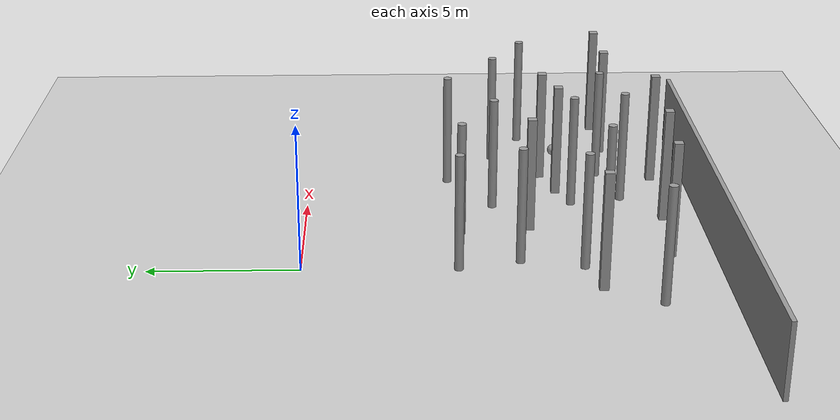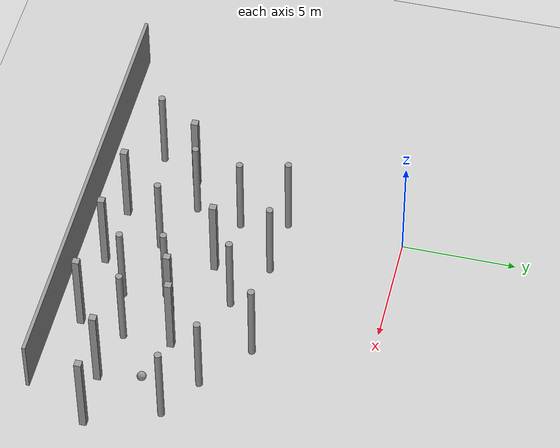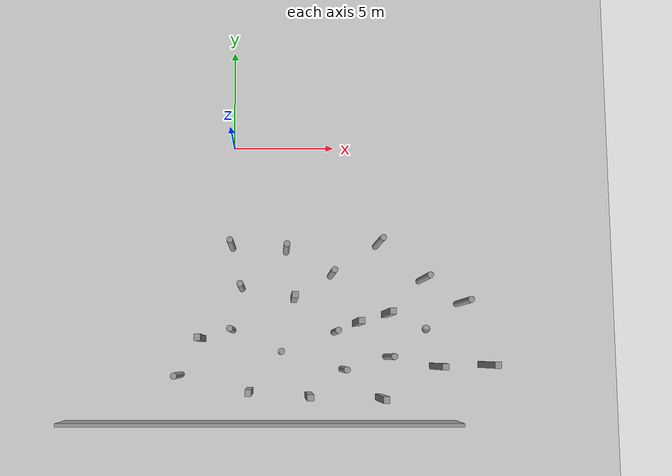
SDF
<sdf version="1.6">
 <world name="default">
  <model name="ground_plane">
   <static>1</static>
   <link name="link">
    <collision name="collision">
     <geometry><plane><normal>0 0 1</normal><size>100 100</size></plane></geometry>
    </collision>
    <visual name="visual">
     <cast_shadows>0</cast_shadows>
     <geometry><plane><normal>0 0 1</normal><size>100 100</size></plane></geometry>
     <material>
      <script><uri>file://media/materials/scripts/gazebo.material</uri><name>Gazebo/Gray</name></script>
     </material>
    </visual>
   </link>
  </model>
  <model name="unit_sphere">
   <link name="link">
    <inertial>
     <mass>1</mass>
     <inertia><ixx>0.1</ixx><ixy>0</ixy><ixz>0</ixz><iyy>0.1</iyy><iyz>0</iyz><izz>0.1</izz></inertia>
    </inertial>
    <gravity>0</gravity>
    <visual name="visual">
     <geometry><sphere><radius>0.203941</radius></sphere></geometry>
     <material>
      <script><name>Gazebo/Grey</name><uri>file://media/materials/scripts/gazebo.material</uri></script>
      <shader type="pixel"><normal_map>__default__</normal_map></shader>
     </material>
    </visual>
    <collision name="collision">
     <geometry><sphere><radius>0.203941</radius></sphere></geometry>
     <surface>
      <friction>
       <ode><mu>1</mu><mu2>1</mu2><fdir1>0 0 0</fdir1><slip1>0</slip1><slip2>0</slip2></ode>
       <torsional>
        <coefficient>1</coefficient>
        <patch_radius>0</patch_radius>
        <surface_radius>0</surface_radius>
        <use_patch_radius>1</use_patch_radius>
        <ode><slip>0</slip></ode>
       </torsional>
      </friction>
      <bounce><restitution_coefficient>0</restitution_coefficient><threshold>1e+06</threshold></bounce>
      <contact>
       <collide_without_contact>0</collide_without_contact>
       <collide_without_contact_bitmask>1</collide_without_contact_bitmask>
       <collide_bitmask>1</collide_bitmask>
       <ode>
        <soft_cfm>0</soft_cfm>
        <soft_erp>0.2</soft_erp>
        <kp>1e+13</kp>
        <kd>1</kd>
        <max_vel>0.01</max_vel>
        <min_depth>0</min_depth>
       </ode>
       <bullet>
        <split_impulse>1</split_impulse>
        <split_impulse_penetration_threshold>-0.01</split_impulse_penetration_threshold>
        <soft_cfm>0</soft_cfm>
        <soft_erp>0.2</soft_erp>
        <kp>1e+13</kp>
        <kd>1</kd>
       </bullet>
      </contact>
     </surface>
    </collision>
   </link>
   <static>0</static>
   <pose>9.54607 -9.14462 0.203941 0 -0 0</pose>
  </model>
  <model name="unit_box_clone_7">
   <link name="link">
    <inertial>
     <mass>1000</mass>
     <inertia><ixx>166.667</ixx><ixy>0</ixy><ixz>0</ixz><iyy>166.667</iyy><iyz>0</iyz><izz>166.667</izz></inertia>
    </inertial>
    <visual name="visual">
     <geometry><box><size>0.3 0.3 4</size></box></geometry>
     <material>
      <script><name>Gazebo/Grey</name><uri>file://media/materials/scripts/gazebo.material</uri></script>
      <shader type="vertex"><normal_map>__default__</normal_map></shader>
      <ambient>0.3 0.3 0.3 1</ambient>
      <diffuse>0.7 0.7 0.7 1</diffuse>
      <specular>0.01 0.01 0.01 1</specular>
      <emissive>0 0 0 1</emissive>
     </material>
    </visual>
    <collision name="collision">
     <geometry><box><size>0.3 0.3 4</size></box></geometry>
     <surface>
      <friction>
       <ode><mu>1</mu><mu2>1</mu2><fdir1>0 0 0</fdir1><slip1>0</slip1><slip2>0</slip2></ode>
       <torsional>
        <coefficient>1</coefficient>
        <patch_radius>0</patch_radius>
        <surface_radius>0</surface_radius>
        <use_patch_radius>1</use_patch_radius>
        <ode><slip>0</slip></ode>
       </torsional>
      </friction>
      <bounce><restitution_coefficient>0</restitution_coefficient><threshold>1e+06</threshold></bounce>
      <contact>
       <collide_without_contact>0</collide_without_contact>
       <collide_without_contact_bitmask>1</collide_without_contact_bitmask>
       <collide_bitmask>1</collide_bitmask>
       <ode>
        <soft_cfm>0</soft_cfm>
        <soft_erp>0.2</soft_erp>
        <kp>1e+13</kp>
        <kd>1</kd>
        <max_vel>0.01</max_vel>
        <min_depth>0</min_depth>
       </ode>
       <bullet>
        <split_impulse>1</split_impulse>
        <split_impulse_penetration_threshold>-0.01</split_impulse_penetration_threshold>
        <soft_cfm>0</soft_cfm>
        <soft_erp>0.2</soft_erp>
        <kp>1e+13</kp>
        <kd>1</kd>
       </bullet>
      </contact>
     </surface>
    </collision>
   </link>
   <static>0</static>
   <pose>9.86044 -10.963 2 2e-06 -1.6e-05 -0.003976</pose>
  </model>
  <model name="unit_cylinder_clone_1">
   <link name="link">
    <inertial>
     <mass>1000</mass>
     <inertia><ixx>145.833</ixx><ixy>0</ixy><ixz>0</ixz><iyy>145.833</iyy><iyz>0</iyz><izz>125</izz></inertia>
    </inertial>
    <visual name="visual">
     <geometry><cylinder><radius>0.15</radius><length>4</length></cylinder></geometry>
     <material>
      <script><name>Gazebo/Grey</name><uri>file://media/materials/scripts/gazebo.material</uri></script>
      <shader type="vertex"><normal_map>__default__</normal_map></shader>
      <ambient>0.3 0.3 0.3 1</ambient>
      <diffuse>0.7 0.7 0.7 1</diffuse>
      <specular>0.01 0.01 0.01 1</specular>
      <emissive>0 0 0 1</emissive>
     </material>
    </visual>
    <collision name="collision">
     <geometry><cylinder><radius>0.15</radius><length>4</length></cylinder></geometry>
     <surface>
      <friction>
       <ode><mu>1</mu><mu2>1</mu2><fdir1>0 0 0</fdir1><slip1>0</slip1><slip2>0</slip2></ode>
       <torsional>
        <coefficient>1</coefficient>
        <patch_radius>0</patch_radius>
        <surface_radius>0</surface_radius>
        <use_patch_radius>1</use_patch_radius>
        <ode><slip>0</slip></ode>
       </torsional>
      </friction>
      <bounce><restitution_coefficient>0</restitution_coefficient><threshold>1e+06</threshold></bounce>
      <contact>
       <collide_without_contact>0</collide_without_contact>
       <collide_without_contact_bitmask>1</collide_without_contact_bitmask>
       <collide_bitmask>1</collide_bitmask>
       <ode>
        <soft_cfm>0</soft_cfm>
        <soft_erp>0.2</soft_erp>
        <kp>1e+13</kp>
        <kd>1</kd>
        <max_vel>0.01</max_vel>
        <min_depth>0</min_depth>
       </ode>
       <bullet>
        <split_impulse>1</split_impulse>
        <split_impulse_penetration_threshold>-0.01</split_impulse_penetration_threshold>
        <soft_cfm>0</soft_cfm>
        <soft_erp>0.2</soft_erp>
        <kp>1e+13</kp>
        <kd>1</kd>
       </bullet>
      </contact>
     </surface>
    </collision>
   </link>
   <static>0</static>
   <pose>2.60647 -5.30395 1.99998 -1e-06 1e-06 -0.076568</pose>
  </model>
  <model name="unit_cylinder_clone_2">
   <link name="link">
    <inertial>
     <mass>1000</mass>
     <inertia><ixx>145.833</ixx><ixy>0</ixy><ixz>0</ixz><iyy>145.833</iyy><iyz>0</iyz><izz>125</izz></inertia>
    </inertial>
    <visual name="visual">
     <geometry><cylinder><radius>0.15</radius><length>4</length></cylinder></geometry>
     <material>
      <script><name>Gazebo/Grey</name><uri>file://media/materials/scripts/gazebo.material</uri></script>
      <shader type="vertex"><normal_map>__default__</normal_map></shader>
      <ambient>0.3 0.3 0.3 1</ambient>
      <diffuse>0.7 0.7 0.7 1</diffuse>
      <specular>0.01 0.01 0.01 1</specular>
      <emissive>0 0 0 1</emissive>
     </material>
    </visual>
    <collision name="collision">
     <geometry><cylinder><radius>0.15</radius><length>4</length></cylinder></geometry>
     <surface>
      <friction>
       <ode><mu>1</mu><mu2>1</mu2><fdir1>0 0 0</fdir1><slip1>0</slip1><slip2>0</slip2></ode>
       <torsional>
        <coefficient>1</coefficient>
        <patch_radius>0</patch_radius>
        <surface_radius>0</surface_radius>
        <use_patch_radius>1</use_patch_radius>
        <ode><slip>0</slip></ode>
       </torsional>
      </friction>
      <bounce><restitution_coefficient>0</restitution_coefficient><threshold>1e+06</threshold></bounce>
      <contact>
       <collide_without_contact>0</collide_without_contact>
       <collide_without_contact_bitmask>1</collide_without_contact_bitmask>
       <collide_bitmask>1</collide_bitmask>
       <ode>
        <soft_cfm>0</soft_cfm>
        <soft_erp>0.2</soft_erp>
        <kp>1e+13</kp>
        <kd>1</kd>
        <max_vel>0.01</max_vel>
        <min_depth>0</min_depth>
       </ode>
       <bullet>
        <split_impulse>1</split_impulse>
        <split_impulse_penetration_threshold>-0.01</split_impulse_penetration_threshold>
        <soft_cfm>0</soft_cfm>
        <soft_erp>0.2</soft_erp>
        <kp>1e+13</kp>
        <kd>1</kd>
       </bullet>
      </contact>
     </surface>
    </collision>
   </link>
   <static>0</static>
   <pose>4.97347 -9.30632 1.99998 -1e-06 1e-06 -0.093582</pose>
  </model>
  <model name="unit_cylinder_clone_1_clone_9">
   <link name="link">
    <inertial>
     <mass>1000</mass>
     <inertia><ixx>145.833</ixx><ixy>0</ixy><ixz>0</ixz><iyy>145.833</iyy><iyz>0</iyz><izz>125</izz></inertia>
    </inertial>
    <visual name="visual">
     <geometry><cylinder><radius>0.15</radius><length>4</length></cylinder></geometry>
     <material>
      <script><name>Gazebo/Grey</name><uri>file://media/materials/scripts/gazebo.material</uri></script>
      <shader type="vertex"><normal_map>__default__</normal_map></shader>
      <ambient>0.3 0.3 0.3 1</ambient>
      <diffuse>0.7 0.7 0.7 1</diffuse>
      <specular>0.01 0.01 0.01 1</specular>
      <emissive>0 0 0 1</emissive>
     </material>
    </visual>
    <collision name="collision">
     <geometry><cylinder><radius>0.15</radius><length>4</length></cylinder></geometry>
     <surface>
      <friction>
       <ode><mu>1</mu><mu2>1</mu2><fdir1>0 0 0</fdir1><slip1>0</slip1><slip2>0</slip2></ode>
       <torsional>
        <coefficient>1</coefficient>
        <patch_radius>0</patch_radius>
        <surface_radius>0</surface_radius>
        <use_patch_radius>1</use_patch_radius>
        <ode><slip>0</slip></ode>
       </torsional>
      </friction>
      <bounce><restitution_coefficient>0</restitution_coefficient><threshold>1e+06</threshold></bounce>
      <contact>
       <collide_without_contact>0</collide_without_contact>
       <collide_without_contact_bitmask>1</collide_without_contact_bitmask>
       <collide_bitmask>1</collide_bitmask>
       <ode>
        <soft_cfm>0</soft_cfm>
        <soft_erp>0.2</soft_erp>
        <kp>1e+13</kp>
        <kd>1</kd>
        <max_vel>0.01</max_vel>
        <min_depth>0</min_depth>
       </ode>
       <bullet>
        <split_impulse>1</split_impulse>
        <split_impulse_penetration_threshold>-0.01</split_impulse_penetration_threshold>
        <soft_cfm>0</soft_cfm>
        <soft_erp>0.2</soft_erp>
        <kp>1e+13</kp>
        <kd>1</kd>
       </bullet>
      </contact>
     </surface>
    </collision>
   </link>
   <static>0</static>
   <pose>11.112 -7.88941 1.99995 -0.000251 0.000107 -0.391806</pose>
  </model>
  <model name="unit_cylinder_clone_1_clone_10">
   <link name="link">
    <inertial>
     <mass>1000</mass>
     <inertia><ixx>145.833</ixx><ixy>0</ixy><ixz>0</ixz><iyy>145.833</iyy><iyz>0</iyz><izz>125</izz></inertia>
    </inertial>
    <visual name="visual">
     <geometry><cylinder><radius>0.15</radius><length>4</length></cylinder></geometry>
     <material>
      <script><name>Gazebo/Grey</name><uri>file://media/materials/scripts/gazebo.material</uri></script>
      <shader type="vertex"><normal_map>__default__</normal_map></shader>
      <ambient>0.3 0.3 0.3 1</ambient>
      <diffuse>0.7 0.7 0.7 1</diffuse>
      <specular>0.01 0.01 0.01 1</specular>
      <emissive>0 0 0 1</emissive>
     </material>
    </visual>
    <collision name="collision">
     <geometry><cylinder><radius>0.15</radius><length>4</length></cylinder></geometry>
     <surface>
      <friction>
       <ode><mu>1</mu><mu2>1</mu2><fdir1>0 0 0</fdir1><slip1>0</slip1><slip2>0</slip2></ode>
       <torsional>
        <coefficient>1</coefficient>
        <patch_radius>0</patch_radius>
        <surface_radius>0</surface_radius>
        <use_patch_radius>1</use_patch_radius>
        <ode><slip>0</slip></ode>
       </torsional>
      </friction>
      <bounce><restitution_coefficient>0</restitution_coefficient><threshold>1e+06</threshold></bounce>
      <contact>
       <collide_without_contact>0</collide_without_contact>
       <collide_without_contact_bitmask>1</collide_without_contact_bitmask>
       <collide_bitmask>1</collide_bitmask>
       <ode>
        <soft_cfm>0</soft_cfm>
        <soft_erp>0.2</soft_erp>
        <kp>1e+13</kp>
        <kd>1</kd>
        <max_vel>0.01</max_vel>
        <min_depth>0</min_depth>
       </ode>
       <bullet>
        <split_impulse>1</split_impulse>
        <split_impulse_penetration_threshold>-0.01</split_impulse_penetration_threshold>
        <soft_cfm>0</soft_cfm>
        <soft_erp>0.2</soft_erp>
        <kp>1e+13</kp>
        <kd>1</kd>
       </bullet>
      </contact>
     </surface>
    </collision>
   </link>
   <static>0</static>
   <pose>-0.0548 -5.11449 1.99998 -1e-06 1e-06 -0.078429</pose>
  </model>
  <model name="unit_cylinder_clone_1_clone_17">
   <link name="link">
    <inertial>
     <mass>1000</mass>
     <inertia><ixx>145.833</ixx><ixy>0</ixy><ixz>0</ixz><iyy>145.833</iyy><iyz>0</iyz><izz>125</izz></inertia>
    </inertial>
    <visual name="visual">
     <geometry><cylinder><radius>0.15</radius><length>4</length></cylinder></geometry>
     <material>
      <script><name>Gazebo/Grey</name><uri>file://media/materials/scripts/gazebo.material</uri></script>
      <shader type="vertex"><normal_map>__default__</normal_map></shader>
      <ambient>0.3 0.3 0.3 1</ambient>
      <diffuse>0.7 0.7 0.7 1</diffuse>
      <specular>0.01 0.01 0.01 1</specular>
      <emissive>0 0 0 1</emissive>
     </material>
    </visual>
    <collision name="collision">
     <geometry><cylinder><radius>0.15</radius><length>4</length></cylinder></geometry>
     <surface>
      <friction>
       <ode><mu>1</mu><mu2>1</mu2><fdir1>0 0 0</fdir1><slip1>0</slip1><slip2>0</slip2></ode>
       <torsional>
        <coefficient>1</coefficient>
        <patch_radius>0</patch_radius>
        <surface_radius>0</surface_radius>
        <use_patch_radius>1</use_patch_radius>
        <ode><slip>0</slip></ode>
       </torsional>
      </friction>
      <bounce><restitution_coefficient>0</restitution_coefficient><threshold>1e+06</threshold></bounce>
      <contact>
       <collide_without_contact>0</collide_without_contact>
       <collide_without_contact_bitmask>1</collide_without_contact_bitmask>
       <collide_bitmask>1</collide_bitmask>
       <ode>
        <soft_cfm>0</soft_cfm>
        <soft_erp>0.2</soft_erp>
        <kp>1e+13</kp>
        <kd>1</kd>
        <max_vel>0.01</max_vel>
        <min_depth>0</min_depth>
       </ode>
       <bullet>
        <split_impulse>1</split_impulse>
        <split_impulse_penetration_threshold>-0.01</split_impulse_penetration_threshold>
        <soft_cfm>0</soft_cfm>
        <soft_erp>0.2</soft_erp>
        <kp>1e+13</kp>
        <kd>1</kd>
       </bullet>
      </contact>
     </surface>
    </collision>
   </link>
   <static>0</static>
   <pose>-0.030975 -9.2084 1.99995 -0.000252 0.000105 -0.397866</pose>
  </model>
  <model name="unit_cylinder_clone_1_clone_20">
   <link name="link">
    <inertial>
     <mass>1000</mass>
     <inertia><ixx>145.833</ixx><ixy>0</ixy><ixz>0</ixz><iyy>145.833</iyy><iyz>0</iyz><izz>125</izz></inertia>
    </inertial>
    <visual name="visual">
     <geometry><cylinder><radius>0.15</radius><length>4</length></cylinder></geometry>
     <material>
      <script><name>Gazebo/Grey</name><uri>file://media/materials/scripts/gazebo.material</uri></script>
      <shader type="vertex"><normal_map>__default__</normal_map></shader>
      <ambient>0.3 0.3 0.3 1</ambient>
      <diffuse>0.7 0.7 0.7 1</diffuse>
      <specular>0.01 0.01 0.01 1</specular>
      <emissive>0 0 0 1</emissive>
     </material>
    </visual>
    <collision name="collision">
     <geometry><cylinder><radius>0.15</radius><length>4</length></cylinder></geometry>
     <surface>
      <friction>
       <ode><mu>1</mu><mu2>1</mu2><fdir1>0 0 0</fdir1><slip1>0</slip1><slip2>0</slip2></ode>
       <torsional>
        <coefficient>1</coefficient>
        <patch_radius>0</patch_radius>
        <surface_radius>0</surface_radius>
        <use_patch_radius>1</use_patch_radius>
        <ode><slip>0</slip></ode>
       </torsional>
      </friction>
      <bounce><restitution_coefficient>0</restitution_coefficient><threshold>1e+06</threshold></bounce>
      <contact>
       <collide_without_contact>0</collide_without_contact>
       <collide_without_contact_bitmask>1</collide_without_contact_bitmask>
       <collide_bitmask>1</collide_bitmask>
       <ode>
        <soft_cfm>0</soft_cfm>
        <soft_erp>0.2</soft_erp>
        <kp>1e+13</kp>
        <kd>1</kd>
        <max_vel>0.01</max_vel>
        <min_depth>0</min_depth>
       </ode>
       <bullet>
        <split_impulse>1</split_impulse>
        <split_impulse_penetration_threshold>-0.01</split_impulse_penetration_threshold>
        <soft_cfm>0</soft_cfm>
        <soft_erp>0.2</soft_erp>
        <kp>1e+13</kp>
        <kd>1</kd>
       </bullet>
      </contact>
     </surface>
    </collision>
   </link>
   <static>0</static>
   <pose>0.426078 -7.14787 1.99995 -0.000251 0.000106 -0.395373</pose>
  </model>
  <model name="unit_cylinder_clone_1_clone_23">
   <link name="link">
    <inertial>
     <mass>1000</mass>
     <inertia><ixx>145.833</ixx><ixy>0</ixy><ixz>0</ixz><iyy>145.833</iyy><iyz>0</iyz><izz>125</izz></inertia>
    </inertial>
    <visual name="visual">
     <geometry><cylinder><radius>0.15</radius><length>4</length></cylinder></geometry>
     <material>
      <script><name>Gazebo/Grey</name><uri>file://media/materials/scripts/gazebo.material</uri></script>
      <shader type="vertex"><normal_map>__default__</normal_map></shader>
      <ambient>0.3 0.3 0.3 1</ambient>
      <diffuse>0.7 0.7 0.7 1</diffuse>
      <specular>0.01 0.01 0.01 1</specular>
      <emissive>0 0 0 1</emissive>
     </material>
    </visual>
    <collision name="collision">
     <geometry><cylinder><radius>0.15</radius><length>4</length></cylinder></geometry>
     <surface>
      <friction>
       <ode><mu>1</mu><mu2>1</mu2><fdir1>0 0 0</fdir1><slip1>0</slip1><slip2>0</slip2></ode>
       <torsional>
        <coefficient>1</coefficient>
        <patch_radius>0</patch_radius>
        <surface_radius>0</surface_radius>
        <use_patch_radius>1</use_patch_radius>
        <ode><slip>0</slip></ode>
       </torsional>
      </friction>
      <bounce><restitution_coefficient>0</restitution_coefficient><threshold>1e+06</threshold></bounce>
      <contact>
       <collide_without_contact>0</collide_without_contact>
       <collide_without_contact_bitmask>1</collide_without_contact_bitmask>
       <collide_bitmask>1</collide_bitmask>
       <ode>
        <soft_cfm>0</soft_cfm>
        <soft_erp>0.2</soft_erp>
        <kp>1e+13</kp>
        <kd>1</kd>
        <max_vel>0.01</max_vel>
        <min_depth>0</min_depth>
       </ode>
       <bullet>
        <split_impulse>1</split_impulse>
        <split_impulse_penetration_threshold>-0.01</split_impulse_penetration_threshold>
        <soft_cfm>0</soft_cfm>
        <soft_erp>0.2</soft_erp>
        <kp>1e+13</kp>
        <kd>1</kd>
       </bullet>
      </contact>
     </surface>
    </collision>
   </link>
   <static>0</static>
   <pose>7.09207 -5.01036 1.99998 -1e-06 1e-06 -0.245924</pose>
  </model>
  <model name="unit_cylinder_clone_1_clone_24">
   <link name="link">
    <inertial>
     <mass>1000</mass>
     <inertia><ixx>145.833</ixx><ixy>0</ixy><ixz>0</ixz><iyy>145.833</iyy><iyz>0</iyz><izz>125</izz></inertia>
    </inertial>
    <visual name="visual">
     <geometry><cylinder><radius>0.15</radius><length>4</length></cylinder></geometry>
     <material>
      <script><name>Gazebo/Grey</name><uri>file://media/materials/scripts/gazebo.material</uri></script>
      <shader type="vertex"><normal_map>__default__</normal_map></shader>
      <ambient>0.3 0.3 0.3 1</ambient>
      <diffuse>0.7 0.7 0.7 1</diffuse>
      <specular>0.01 0.01 0.01 1</specular>
      <emissive>0 0 0 1</emissive>
     </material>
    </visual>
    <collision name="collision">
     <geometry><cylinder><radius>0.15</radius><length>4</length></cylinder></geometry>
     <surface>
      <friction>
       <ode><mu>1</mu><mu2>1</mu2><fdir1>0 0 0</fdir1><slip1>0</slip1><slip2>0</slip2></ode>
       <torsional>
        <coefficient>1</coefficient>
        <patch_radius>0</patch_radius>
        <surface_radius>0</surface_radius>
        <use_patch_radius>1</use_patch_radius>
        <ode><slip>0</slip></ode>
       </torsional>
      </friction>
      <bounce><restitution_coefficient>0</restitution_coefficient><threshold>1e+06</threshold></bounce>
      <contact>
       <collide_without_contact>0</collide_without_contact>
       <collide_without_contact_bitmask>1</collide_without_contact_bitmask>
       <collide_bitmask>1</collide_bitmask>
       <ode>
        <soft_cfm>0</soft_cfm>
        <soft_erp>0.2</soft_erp>
        <kp>1e+13</kp>
        <kd>1</kd>
        <max_vel>0.01</max_vel>
        <min_depth>0</min_depth>
       </ode>
       <bullet>
        <split_impulse>1</split_impulse>
        <split_impulse_penetration_threshold>-0.01</split_impulse_penetration_threshold>
        <soft_cfm>0</soft_cfm>
        <soft_erp>0.2</soft_erp>
        <kp>1e+13</kp>
        <kd>1</kd>
       </bullet>
      </contact>
     </surface>
    </collision>
   </link>
   <static>0</static>
   <pose>9.24851 -6.7521 1.99995 -0.000251 0.000106 -0.394804</pose>
  </model>
  <model name="unit_cylinder_clone_1_clone_28">
   <link name="link">
    <inertial>
     <mass>1000</mass>
     <inertia><ixx>145.833</ixx><ixy>0</ixy><ixz>0</ixz><iyy>145.833</iyy><iyz>0</iyz><izz>125</izz></inertia>
    </inertial>
    <visual name="visual">
     <geometry><cylinder><radius>0.15</radius><length>4</length></cylinder></geometry>
     <material>
      <script><name>Gazebo/Grey</name><uri>file://media/materials/scripts/gazebo.material</uri></script>
      <shader type="vertex"><normal_map>__default__</normal_map></shader>
      <ambient>0.3 0.3 0.3 1</ambient>
      <diffuse>0.7 0.7 0.7 1</diffuse>
      <specular>0.01 0.01 0.01 1</specular>
      <emissive>0 0 0 1</emissive>
     </material>
    </visual>
    <collision name="collision">
     <geometry><cylinder><radius>0.15</radius><length>4</length></cylinder></geometry>
     <surface>
      <friction>
       <ode><mu>1</mu><mu2>1</mu2><fdir1>0 0 0</fdir1><slip1>0</slip1><slip2>0</slip2></ode>
       <torsional>
        <coefficient>1</coefficient>
        <patch_radius>0</patch_radius>
        <surface_radius>0</surface_radius>
        <use_patch_radius>1</use_patch_radius>
        <ode><slip>0</slip></ode>
       </torsional>
      </friction>
      <bounce><restitution_coefficient>0</restitution_coefficient><threshold>1e+06</threshold></bounce>
      <contact>
       <collide_without_contact>0</collide_without_contact>
       <collide_without_contact_bitmask>1</collide_without_contact_bitmask>
       <collide_bitmask>1</collide_bitmask>
       <ode>
        <soft_cfm>0</soft_cfm>
        <soft_erp>0.2</soft_erp>
        <kp>1e+13</kp>
        <kd>1</kd>
        <max_vel>0.01</max_vel>
        <min_depth>0</min_depth>
       </ode>
       <bullet>
        <split_impulse>1</split_impulse>
        <split_impulse_penetration_threshold>-0.01</split_impulse_penetration_threshold>
        <soft_cfm>0</soft_cfm>
        <soft_erp>0.2</soft_erp>
        <kp>1e+13</kp>
        <kd>1</kd>
       </bullet>
      </contact>
     </surface>
    </collision>
   </link>
   <static>0</static>
   <pose>-2.58286 -11.3823 1.99995 -0.000252 0.000105 -0.397867</pose>
  </model>
  <model name="unit_cylinder_clone_1_clone_7_clone_4">
   <link name="link">
    <inertial>
     <mass>1000</mass>
     <inertia><ixx>145.833</ixx><ixy>0</ixy><ixz>0</ixz><iyy>145.833</iyy><iyz>0</iyz><izz>125</izz></inertia>
    </inertial>
    <visual name="visual">
     <geometry><cylinder><radius>0.15</radius><length>4</length></cylinder></geometry>
     <material>
      <script><name>Gazebo/Grey</name><uri>file://media/materials/scripts/gazebo.material</uri></script>
      <shader type="vertex"><normal_map>__default__</normal_map></shader>
      <ambient>0.3 0.3 0.3 1</ambient>
      <diffuse>0.7 0.7 0.7 1</diffuse>
      <specular>0.01 0.01 0.01 1</specular>
      <emissive>0 0 0 1</emissive>
     </material>
    </visual>
    <collision name="collision">
     <geometry><cylinder><radius>0.15</radius><length>4</length></cylinder></geometry>
     <surface>
      <friction>
       <ode><mu>1</mu><mu2>1</mu2><fdir1>0 0 0</fdir1><slip1>0</slip1><slip2>0</slip2></ode>
       <torsional>
        <coefficient>1</coefficient>
        <patch_radius>0</patch_radius>
        <surface_radius>0</surface_radius>
        <use_patch_radius>1</use_patch_radius>
        <ode><slip>0</slip></ode>
       </torsional>
      </friction>
      <bounce><restitution_coefficient>0</restitution_coefficient><threshold>1e+06</threshold></bounce>
      <contact>
       <collide_without_contact>0</collide_without_contact>
       <collide_without_contact_bitmask>1</collide_without_contact_bitmask>
       <collide_bitmask>1</collide_bitmask>
       <ode>
        <soft_cfm>0</soft_cfm>
        <soft_erp>0.2</soft_erp>
        <kp>1e+13</kp>
        <kd>1</kd>
        <max_vel>0.01</max_vel>
        <min_depth>0</min_depth>
       </ode>
       <bullet>
        <split_impulse>1</split_impulse>
        <split_impulse_penetration_threshold>-0.01</split_impulse_penetration_threshold>
        <soft_cfm>0</soft_cfm>
        <soft_erp>0.2</soft_erp>
        <kp>1e+13</kp>
        <kd>1</kd>
       </bullet>
      </contact>
     </surface>
    </collision>
   </link>
   <static>0</static>
   <pose>2.35006 -10.2609 1.99995 -0.000251 0.000107 -0.391652</pose>
  </model>
  <model name="Untitled">
   <pose>1.33364 -13.692 0 0 -0 0</pose>
   <link name="Wall_3">
    <collision name="Wall_3_Collision">
     <geometry><box><size>19.25 0.15 2.5</size></box></geometry>
     <pose>0 0 1.25 0 -0 0</pose>
    </collision>
    <visual name="Wall_3_Visual">
     <pose>0 0 1.25 0 -0 0</pose>
     <geometry><box><size>19.25 0.15 2.5</size></box></geometry>
     <material>
      <script><uri>file://media/materials/scripts/gazebo.material</uri><name>Gazebo/Grey</name></script>
      <ambient>1 1 1 1</ambient>
     </material>
     <meta><layer>0</layer></meta>
    </visual>
   </link>
   <static>1</static>
  </model>
  <model name="unit_cylinder_clone_clone">
   <link name="link">
    <inertial>
     <mass>1000</mass>
     <inertia><ixx>145.833</ixx><ixy>0</ixy><ixz>0</ixz><iyy>145.833</iyy><iyz>0</iyz><izz>125</izz></inertia>
    </inertial>
    <visual name="visual">
     <geometry><cylinder><radius>0.15</radius><length>4</length></cylinder></geometry>
     <material>
      <script><name>Gazebo/Grey</name><uri>file://media/materials/scripts/gazebo.material</uri></script>
      <shader type="vertex"><normal_map>__default__</normal_map></shader>
      <ambient>0.3 0.3 0.3 1</ambient>
      <diffuse>0.7 0.7 0.7 1</diffuse>
      <specular>0.01 0.01 0.01 1</specular>
      <emissive>0 0 0 1</emissive>
     </material>
    </visual>
    <collision name="collision">
     <geometry><cylinder><radius>0.15</radius><length>4</length></cylinder></geometry>
     <surface>
      <friction>
       <ode><mu>1</mu><mu2>1</mu2><fdir1>0 0 0</fdir1><slip1>0</slip1><slip2>0</slip2></ode>
       <torsional>
        <coefficient>1</coefficient>
        <patch_radius>0</patch_radius>
        <surface_radius>0</surface_radius>
        <use_patch_radius>1</use_patch_radius>
        <ode><slip>0</slip></ode>
       </torsional>
      </friction>
      <bounce><restitution_coefficient>0</restitution_coefficient><threshold>1e+06</threshold></bounce>
      <contact>
       <collide_without_contact>0</collide_without_contact>
       <collide_without_contact_bitmask>1</collide_without_contact_bitmask>
       <collide_bitmask>1</collide_bitmask>
       <ode>
        <soft_cfm>0</soft_cfm>
        <soft_erp>0.2</soft_erp>
        <kp>1e+13</kp>
        <kd>1</kd>
        <max_vel>0.01</max_vel>
        <min_depth>0</min_depth>
       </ode>
       <bullet>
        <split_impulse>1</split_impulse>
        <split_impulse_penetration_threshold>-0.01</split_impulse_penetration_threshold>
        <soft_cfm>0</soft_cfm>
        <soft_erp>0.2</soft_erp>
        <kp>1e+13</kp>
        <kd>1</kd>
       </bullet>
      </contact>
     </surface>
    </collision>
   </link>
   <static>0</static>
   <pose>5.34826 -11.1077 1.99998 -1e-06 1e-06 -0.081884</pose>
  </model>
  <model name="unit_cylinder_clone_clone_0">
   <link name="link">
    <inertial>
     <mass>1000</mass>
     <inertia><ixx>145.833</ixx><ixy>0</ixy><ixz>0</ixz><iyy>145.833</iyy><iyz>0</iyz><izz>125</izz></inertia>
    </inertial>
    <visual name="visual">
     <geometry><cylinder><radius>0.15</radius><length>4</length></cylinder></geometry>
     <material>
      <script><name>Gazebo/Grey</name><uri>file://media/materials/scripts/gazebo.material</uri></script>
      <shader type="vertex"><normal_map>__default__</normal_map></shader>
      <ambient>0.3 0.3 0.3 1</ambient>
      <diffuse>0.7 0.7 0.7 1</diffuse>
      <specular>0.01 0.01 0.01 1</specular>
      <emissive>0 0 0 1</emissive>
     </material>
    </visual>
    <collision name="collision">
     <geometry><cylinder><radius>0.15</radius><length>4</length></cylinder></geometry>
     <surface>
      <friction>
       <ode><mu>1</mu><mu2>1</mu2><fdir1>0 0 0</fdir1><slip1>0</slip1><slip2>0</slip2></ode>
       <torsional>
        <coefficient>1</coefficient>
        <patch_radius>0</patch_radius>
        <surface_radius>0</surface_radius>
        <use_patch_radius>1</use_patch_radius>
        <ode><slip>0</slip></ode>
       </torsional>
      </friction>
      <bounce><restitution_coefficient>0</restitution_coefficient><threshold>1e+06</threshold></bounce>
      <contact>
       <collide_without_contact>0</collide_without_contact>
       <collide_without_contact_bitmask>1</collide_without_contact_bitmask>
       <collide_bitmask>1</collide_bitmask>
       <ode>
        <soft_cfm>0</soft_cfm>
        <soft_erp>0.2</soft_erp>
        <kp>1e+13</kp>
        <kd>1</kd>
        <max_vel>0.01</max_vel>
        <min_depth>0</min_depth>
       </ode>
       <bullet>
        <split_impulse>1</split_impulse>
        <split_impulse_penetration_threshold>-0.01</split_impulse_penetration_threshold>
        <soft_cfm>0</soft_cfm>
        <soft_erp>0.2</soft_erp>
        <kp>1e+13</kp>
        <kd>1</kd>
       </bullet>
      </contact>
     </surface>
    </collision>
   </link>
   <static>0</static>
   <pose>7.5332 -10.5025 1.99998 -1e-06 1e-06 -0.083173</pose>
  </model>
  <model name="unit_cylinder_clone_clone_1">
   <link name="link">
    <inertial>
     <mass>1000</mass>
     <inertia><ixx>145.833</ixx><ixy>0</ixy><ixz>0</ixz><iyy>145.833</iyy><iyz>0</iyz><izz>125</izz></inertia>
    </inertial>
    <visual name="visual">
     <geometry><cylinder><radius>0.15</radius><length>4</length></cylinder></geometry>
     <material>
      <script><name>Gazebo/Grey</name><uri>file://media/materials/scripts/gazebo.material</uri></script>
      <shader type="vertex"><normal_map>__default__</normal_map></shader>
      <ambient>0.3 0.3 0.3 1</ambient>
      <diffuse>0.7 0.7 0.7 1</diffuse>
      <specular>0.01 0.01 0.01 1</specular>
      <emissive>0 0 0 1</emissive>
     </material>
    </visual>
    <collision name="collision">
     <geometry><cylinder><radius>0.15</radius><length>4</length></cylinder></geometry>
     <surface>
      <friction>
       <ode><mu>1</mu><mu2>1</mu2><fdir1>0 0 0</fdir1><slip1>0</slip1><slip2>0</slip2></ode>
       <torsional>
        <coefficient>1</coefficient>
        <patch_radius>0</patch_radius>
        <surface_radius>0</surface_radius>
        <use_patch_radius>1</use_patch_radius>
        <ode><slip>0</slip></ode>
       </torsional>
      </friction>
      <bounce><restitution_coefficient>0</restitution_coefficient><threshold>1e+06</threshold></bounce>
      <contact>
       <collide_without_contact>0</collide_without_contact>
       <collide_without_contact_bitmask>1</collide_without_contact_bitmask>
       <collide_bitmask>1</collide_bitmask>
       <ode>
        <soft_cfm>0</soft_cfm>
        <soft_erp>0.2</soft_erp>
        <kp>1e+13</kp>
        <kd>1</kd>
        <max_vel>0.01</max_vel>
        <min_depth>0</min_depth>
       </ode>
       <bullet>
        <split_impulse>1</split_impulse>
        <split_impulse_penetration_threshold>-0.01</split_impulse_penetration_threshold>
        <soft_cfm>0</soft_cfm>
        <soft_erp>0.2</soft_erp>
        <kp>1e+13</kp>
        <kd>1</kd>
       </bullet>
      </contact>
     </surface>
    </collision>
   </link>
   <static>0</static>
   <pose>4.81684 -6.51167 1.99998 -1e-06 1e-06 -0.079015</pose>
  </model>
  <model name="unit_box_clone_26_clone">
   <link name="link">
    <inertial>
     <mass>1000</mass>
     <inertia><ixx>166.667</ixx><ixy>0</ixy><ixz>0</ixz><iyy>166.667</iyy><iyz>0</iyz><izz>166.667</izz></inertia>
    </inertial>
    <visual name="visual">
     <geometry><box><size>0.3 0.3 4</size></box></geometry>
     <material>
      <script><name>Gazebo/Grey</name><uri>file://media/materials/scripts/gazebo.material</uri></script>
      <shader type="vertex"><normal_map>__default__</normal_map></shader>
      <ambient>0.3 0.3 0.3 1</ambient>
      <diffuse>0.7 0.7 0.7 1</diffuse>
      <specular>0.01 0.01 0.01 1</specular>
      <emissive>0 0 0 1</emissive>
     </material>
    </visual>
    <collision name="collision">
     <geometry><box><size>0.3 0.3 4</size></box></geometry>
     <surface>
      <friction>
       <ode><mu>1</mu><mu2>1</mu2><fdir1>0 0 0</fdir1><slip1>0</slip1><slip2>0</slip2></ode>
       <torsional>
        <coefficient>1</coefficient>
        <patch_radius>0</patch_radius>
        <surface_radius>0</surface_radius>
        <use_patch_radius>1</use_patch_radius>
        <ode><slip>0</slip></ode>
       </torsional>
      </friction>
      <bounce><restitution_coefficient>0</restitution_coefficient><threshold>1e+06</threshold></bounce>
      <contact>
       <collide_without_contact>0</collide_without_contact>
       <collide_without_contact_bitmask>1</collide_without_contact_bitmask>
       <collide_bitmask>1</collide_bitmask>
       <ode>
        <soft_cfm>0</soft_cfm>
        <soft_erp>0.2</soft_erp>
        <kp>1e+13</kp>
        <kd>1</kd>
        <max_vel>0.01</max_vel>
        <min_depth>0</min_depth>
       </ode>
       <bullet>
        <split_impulse>1</split_impulse>
        <split_impulse_penetration_threshold>-0.01</split_impulse_penetration_threshold>
        <soft_cfm>0</soft_cfm>
        <soft_erp>0.2</soft_erp>
        <kp>1e+13</kp>
        <kd>1</kd>
       </bullet>
      </contact>
     </surface>
    </collision>
   </link>
   <static>0</static>
   <pose>6.04363 -8.86029 2 -1.3e-05 -4e-06 0.00233</pose>
  </model>
  <model name="unit_box_clone_26_clone_0">
   <link name="link">
    <inertial>
     <mass>1000</mass>
     <inertia><ixx>166.667</ixx><ixy>0</ixy><ixz>0</ixz><iyy>166.667</iyy><iyz>0</iyz><izz>166.667</izz></inertia>
    </inertial>
    <visual name="visual">
     <geometry><box><size>0.3 0.3 4</size></box></geometry>
     <material>
      <script><name>Gazebo/Grey</name><uri>file://media/materials/scripts/gazebo.material</uri></script>
      <shader type="vertex"><normal_map>__default__</normal_map></shader>
      <ambient>0.3 0.3 0.3 1</ambient>
      <diffuse>0.7 0.7 0.7 1</diffuse>
      <specular>0.01 0.01 0.01 1</specular>
      <emissive>0 0 0 1</emissive>
     </material>
    </visual>
    <collision name="collision">
     <geometry><box><size>0.3 0.3 4</size></box></geometry>
     <surface>
      <friction>
       <ode><mu>1</mu><mu2>1</mu2><fdir1>0 0 0</fdir1><slip1>0</slip1><slip2>0</slip2></ode>
       <torsional>
        <coefficient>1</coefficient>
        <patch_radius>0</patch_radius>
        <surface_radius>0</surface_radius>
        <use_patch_radius>1</use_patch_radius>
        <ode><slip>0</slip></ode>
       </torsional>
      </friction>
      <bounce><restitution_coefficient>0</restitution_coefficient><threshold>1e+06</threshold></bounce>
      <contact>
       <collide_without_contact>0</collide_without_contact>
       <collide_without_contact_bitmask>1</collide_without_contact_bitmask>
       <collide_bitmask>1</collide_bitmask>
       <ode>
        <soft_cfm>0</soft_cfm>
        <soft_erp>0.2</soft_erp>
        <kp>1e+13</kp>
        <kd>1</kd>
        <max_vel>0.01</max_vel>
        <min_depth>0</min_depth>
       </ode>
       <bullet>
        <split_impulse>1</split_impulse>
        <split_impulse_penetration_threshold>-0.01</split_impulse_penetration_threshold>
        <soft_cfm>0</soft_cfm>
        <soft_erp>0.2</soft_erp>
        <kp>1e+13</kp>
        <kd>1</kd>
       </bullet>
      </contact>
     </surface>
    </collision>
   </link>
   <static>0</static>
   <pose>2.98328 -7.6671 2 1.4e-05 -2.1e-05 -0.001816</pose>
  </model>
  <model name="unit_box_clone_26_clone_6">
   <link name="link">
    <inertial>
     <mass>1000</mass>
     <inertia><ixx>166.667</ixx><ixy>0</ixy><ixz>0</ixz><iyy>166.667</iyy><iyz>0</iyz><izz>166.667</izz></inertia>
    </inertial>
    <visual name="visual">
     <geometry><box><size>0.3 0.3 4</size></box></geometry>
     <material>
      <script><name>Gazebo/Grey</name><uri>file://media/materials/scripts/gazebo.material</uri></script>
      <shader type="vertex"><normal_map>__default__</normal_map></shader>
      <ambient>0.3 0.3 0.3 1</ambient>
      <diffuse>0.7 0.7 0.7 1</diffuse>
      <specular>0.01 0.01 0.01 1</specular>
      <emissive>0 0 0 1</emissive>
     </material>
    </visual>
    <collision name="collision">
     <geometry><box><size>0.3 0.3 4</size></box></geometry>
     <surface>
      <friction>
       <ode><mu>1</mu><mu2>1</mu2><fdir1>0 0 0</fdir1><slip1>0</slip1><slip2>0</slip2></ode>
       <torsional>
        <coefficient>1</coefficient>
        <patch_radius>0</patch_radius>
        <surface_radius>0</surface_radius>
        <use_patch_radius>1</use_patch_radius>
        <ode><slip>0</slip></ode>
       </torsional>
      </friction>
      <bounce><restitution_coefficient>0</restitution_coefficient><threshold>1e+06</threshold></bounce>
      <contact>
       <collide_without_contact>0</collide_without_contact>
       <collide_without_contact_bitmask>1</collide_without_contact_bitmask>
       <collide_bitmask>1</collide_bitmask>
       <ode>
        <soft_cfm>0</soft_cfm>
        <soft_erp>0.2</soft_erp>
        <kp>1e+13</kp>
        <kd>1</kd>
        <max_vel>0.01</max_vel>
        <min_depth>0</min_depth>
       </ode>
       <bullet>
        <split_impulse>1</split_impulse>
        <split_impulse_penetration_threshold>-0.01</split_impulse_penetration_threshold>
        <soft_cfm>0</soft_cfm>
        <soft_erp>0.2</soft_erp>
        <kp>1e+13</kp>
        <kd>1</kd>
       </bullet>
      </contact>
     </surface>
    </collision>
   </link>
   <static>0</static>
   <pose>12.2559 -10.887 2 -7e-06 4e-06 -0.003725</pose>
  </model>
  <model name="unit_box_clone_26_clone_7">
   <link name="link">
    <inertial>
     <mass>1000</mass>
     <inertia><ixx>166.667</ixx><ixy>0</ixy><ixz>0</ixz><iyy>166.667</iyy><iyz>0</iyz><izz>166.667</izz></inertia>
    </inertial>
    <visual name="visual">
     <geometry><box><size>0.3 0.3 4</size></box></geometry>
     <material>
      <script><name>Gazebo/Grey</name><uri>file://media/materials/scripts/gazebo.material</uri></script>
      <shader type="vertex"><normal_map>__default__</normal_map></shader>
      <ambient>0.3 0.3 0.3 1</ambient>
      <diffuse>0.7 0.7 0.7 1</diffuse>
      <specular>0.01 0.01 0.01 1</specular>
      <emissive>0 0 0 1</emissive>
     </material>
    </visual>
    <collision name="collision">
     <geometry><box><size>0.3 0.3 4</size></box></geometry>
     <surface>
      <friction>
       <ode><mu>1</mu><mu2>1</mu2><fdir1>0 0 0</fdir1><slip1>0</slip1><slip2>0</slip2></ode>
       <torsional>
        <coefficient>1</coefficient>
        <patch_radius>0</patch_radius>
        <surface_radius>0</surface_radius>
        <use_patch_radius>1</use_patch_radius>
        <ode><slip>0</slip></ode>
       </torsional>
      </friction>
      <bounce><restitution_coefficient>0</restitution_coefficient><threshold>1e+06</threshold></bounce>
      <contact>
       <collide_without_contact>0</collide_without_contact>
       <collide_without_contact_bitmask>1</collide_without_contact_bitmask>
       <collide_bitmask>1</collide_bitmask>
       <ode>
        <soft_cfm>0</soft_cfm>
        <soft_erp>0.2</soft_erp>
        <kp>1e+13</kp>
        <kd>1</kd>
        <max_vel>0.01</max_vel>
        <min_depth>0</min_depth>
       </ode>
       <bullet>
        <split_impulse>1</split_impulse>
        <split_impulse_penetration_threshold>-0.01</split_impulse_penetration_threshold>
        <soft_cfm>0</soft_cfm>
        <soft_erp>0.2</soft_erp>
        <kp>1e+13</kp>
        <kd>1</kd>
       </bullet>
      </contact>
     </surface>
    </collision>
   </link>
   <static>0</static>
   <pose>7.49441 -8.4236 2.00001 -5.9e-05 -1e-06 -0.001959</pose>
  </model>
  <model name="unit_box_clone_26_clone_8">
   <link name="link">
    <inertial>
     <mass>1000</mass>
     <inertia><ixx>166.667</ixx><ixy>0</ixy><ixz>0</ixz><iyy>166.667</iyy><iyz>0</iyz><izz>166.667</izz></inertia>
    </inertial>
    <visual name="visual">
     <geometry><box><size>0.3 0.3 4</size></box></geometry>
     <material>
      <script><name>Gazebo/Grey</name><uri>file://media/materials/scripts/gazebo.material</uri></script>
      <shader type="vertex"><normal_map>__default__</normal_map></shader>
      <ambient>0.3 0.3 0.3 1</ambient>
      <diffuse>0.7 0.7 0.7 1</diffuse>
      <specular>0.01 0.01 0.01 1</specular>
      <emissive>0 0 0 1</emissive>
     </material>
    </visual>
    <collision name="collision">
     <geometry><box><size>0.3 0.3 4</size></box></geometry>
     <surface>
      <friction>
       <ode><mu>1</mu><mu2>1</mu2><fdir1>0 0 0</fdir1><slip1>0</slip1><slip2>0</slip2></ode>
       <torsional>
        <coefficient>1</coefficient>
        <patch_radius>0</patch_radius>
        <surface_radius>0</surface_radius>
        <use_patch_radius>1</use_patch_radius>
        <ode><slip>0</slip></ode>
       </torsional>
      </friction>
      <bounce><restitution_coefficient>0</restitution_coefficient><threshold>1e+06</threshold></bounce>
      <contact>
       <collide_without_contact>0</collide_without_contact>
       <collide_without_contact_bitmask>1</collide_without_contact_bitmask>
       <collide_bitmask>1</collide_bitmask>
       <ode>
        <soft_cfm>0</soft_cfm>
        <soft_erp>0.2</soft_erp>
        <kp>1e+13</kp>
        <kd>1</kd>
        <max_vel>0.01</max_vel>
        <min_depth>0</min_depth>
       </ode>
       <bullet>
        <split_impulse>1</split_impulse>
        <split_impulse_penetration_threshold>-0.01</split_impulse_penetration_threshold>
        <soft_cfm>0</soft_cfm>
        <soft_erp>0.2</soft_erp>
        <kp>1e+13</kp>
        <kd>1</kd>
       </bullet>
      </contact>
     </surface>
    </collision>
   </link>
   <static>0</static>
   <pose>0.822109 -12.149 2 -7e-06 -2e-06 -0.003863</pose>
  </model>
  <model name="unit_box_clone_26_clone_9">
   <link name="link">
    <inertial>
     <mass>1000</mass>
     <inertia><ixx>166.667</ixx><ixy>0</ixy><ixz>0</ixz><iyy>166.667</iyy><iyz>0</iyz><izz>166.667</izz></inertia>
    </inertial>
    <visual name="visual">
     <geometry><box><size>0.3 0.3 4</size></box></geometry>
     <material>
      <script><name>Gazebo/Grey</name><uri>file://media/materials/scripts/gazebo.material</uri></script>
      <shader type="vertex"><normal_map>__default__</normal_map></shader>
      <ambient>0.3 0.3 0.3 1</ambient>
      <diffuse>0.7 0.7 0.7 1</diffuse>
      <specular>0.01 0.01 0.01 1</specular>
      <emissive>0 0 0 1</emissive>
     </material>
    </visual>
    <collision name="collision">
     <geometry><box><size>0.3 0.3 4</size></box></geometry>
     <surface>
      <friction>
       <ode><mu>1</mu><mu2>1</mu2><fdir1>0 0 0</fdir1><slip1>0</slip1><slip2>0</slip2></ode>
       <torsional>
        <coefficient>1</coefficient>
        <patch_radius>0</patch_radius>
        <surface_radius>0</surface_radius>
        <use_patch_radius>1</use_patch_radius>
        <ode><slip>0</slip></ode>
       </torsional>
      </friction>
      <bounce><restitution_coefficient>0</restitution_coefficient><threshold>1e+06</threshold></bounce>
      <contact>
       <collide_without_contact>0</collide_without_contact>
       <collide_without_contact_bitmask>1</collide_without_contact_bitmask>
       <collide_bitmask>1</collide_bitmask>
       <ode>
        <soft_cfm>0</soft_cfm>
        <soft_erp>0.2</soft_erp>
        <kp>1e+13</kp>
        <kd>1</kd>
        <max_vel>0.01</max_vel>
        <min_depth>0</min_depth>
       </ode>
       <bullet>
        <split_impulse>1</split_impulse>
        <split_impulse_penetration_threshold>-0.01</split_impulse_penetration_threshold>
        <soft_cfm>0</soft_cfm>
        <soft_erp>0.2</soft_erp>
        <kp>1e+13</kp>
        <kd>1</kd>
       </bullet>
      </contact>
     </surface>
    </collision>
   </link>
   <static>0</static>
   <pose>-1.52144 -9.61729 2 -1e-06 1.2e-05 -0.005308</pose>
  </model>
  <model name="unit_box_clone_26_clone_11">
   <link name="link">
    <inertial>
     <mass>1000</mass>
     <inertia><ixx>166.667</ixx><ixy>0</ixy><ixz>0</ixz><iyy>166.667</iyy><iyz>0</iyz><izz>166.667</izz></inertia>
    </inertial>
    <visual name="visual">
     <geometry><box><size>0.3 0.3 4</size></box></geometry>
     <material>
      <script><name>Gazebo/Grey</name><uri>file://media/materials/scripts/gazebo.material</uri></script>
      <shader type="vertex"><normal_map>__default__</normal_map></shader>
      <ambient>0.3 0.3 0.3 1</ambient>
      <diffuse>0.7 0.7 0.7 1</diffuse>
      <specular>0.01 0.01 0.01 1</specular>
      <emissive>0 0 0 1</emissive>
     </material>
    </visual>
    <collision name="collision">
     <geometry><box><size>0.3 0.3 4</size></box></geometry>
     <surface>
      <friction>
       <ode><mu>1</mu><mu2>1</mu2><fdir1>0 0 0</fdir1><slip1>0</slip1><slip2>0</slip2></ode>
       <torsional>
        <coefficient>1</coefficient>
        <patch_radius>0</patch_radius>
        <surface_radius>0</surface_radius>
        <use_patch_radius>1</use_patch_radius>
        <ode><slip>0</slip></ode>
       </torsional>
      </friction>
      <bounce><restitution_coefficient>0</restitution_coefficient><threshold>1e+06</threshold></bounce>
      <contact>
       <collide_without_contact>0</collide_without_contact>
       <collide_without_contact_bitmask>1</collide_without_contact_bitmask>
       <collide_bitmask>1</collide_bitmask>
       <ode>
        <soft_cfm>0</soft_cfm>
        <soft_erp>0.2</soft_erp>
        <kp>1e+13</kp>
        <kd>1</kd>
        <max_vel>0.01</max_vel>
        <min_depth>0</min_depth>
       </ode>
       <bullet>
        <split_impulse>1</split_impulse>
        <split_impulse_penetration_threshold>-0.01</split_impulse_penetration_threshold>
        <soft_cfm>0</soft_cfm>
        <soft_erp>0.2</soft_erp>
        <kp>1e+13</kp>
        <kd>1</kd>
       </bullet>
      </contact>
     </surface>
    </collision>
   </link>
   <static>0</static>
   <pose>3.6751 -12.363 2.00001 -4.1e-05 2e-06 -0.000709</pose>
  </model>
  <model name="unit_box_clone_26_clone_12">
   <link name="link">
    <inertial>
     <mass>1000</mass>
     <inertia><ixx>166.667</ixx><ixy>0</ixy><ixz>0</ixz><iyy>166.667</iyy><iyz>0</iyz><izz>166.667</izz></inertia>
    </inertial>
    <visual name="visual">
     <geometry><box><size>0.3 0.3 4</size></box></geometry>
     <material>
      <script><name>Gazebo/Grey</name><uri>file://media/materials/scripts/gazebo.material</uri></script>
      <shader type="vertex"><normal_map>__default__</normal_map></shader>
      <ambient>0.3 0.3 0.3 1</ambient>
      <diffuse>0.7 0.7 0.7 1</diffuse>
      <specular>0.01 0.01 0.01 1</specular>
      <emissive>0 0 0 1</emissive>
     </material>
    </visual>
    <collision name="collision">
     <geometry><box><size>0.3 0.3 4</size></box></geometry>
     <surface>
      <friction>
       <ode><mu>1</mu><mu2>1</mu2><fdir1>0 0 0</fdir1><slip1>0</slip1><slip2>0</slip2></ode>
       <torsional>
        <coefficient>1</coefficient>
        <patch_radius>0</patch_radius>
        <surface_radius>0</surface_radius>
        <use_patch_radius>1</use_patch_radius>
        <ode><slip>0</slip></ode>
       </torsional>
      </friction>
      <bounce><restitution_coefficient>0</restitution_coefficient><threshold>1e+06</threshold></bounce>
      <contact>
       <collide_without_contact>0</collide_without_contact>
       <collide_without_contact_bitmask>1</collide_without_contact_bitmask>
       <collide_bitmask>1</collide_bitmask>
       <ode>
        <soft_cfm>0</soft_cfm>
        <soft_erp>0.2</soft_erp>
        <kp>1e+13</kp>
        <kd>1</kd>
        <max_vel>0.01</max_vel>
        <min_depth>0</min_depth>
       </ode>
       <bullet>
        <split_impulse>1</split_impulse>
        <split_impulse_penetration_threshold>-0.01</split_impulse_penetration_threshold>
        <soft_cfm>0</soft_cfm>
        <soft_erp>0.2</soft_erp>
        <kp>1e+13</kp>
        <kd>1</kd>
       </bullet>
      </contact>
     </surface>
    </collision>
   </link>
   <static>0</static>
   <pose>7.14185 -12.4658 2.00001 3.6e-05 -4e-06 -0.003179</pose>
  </model>
 </world>
</sdf>
